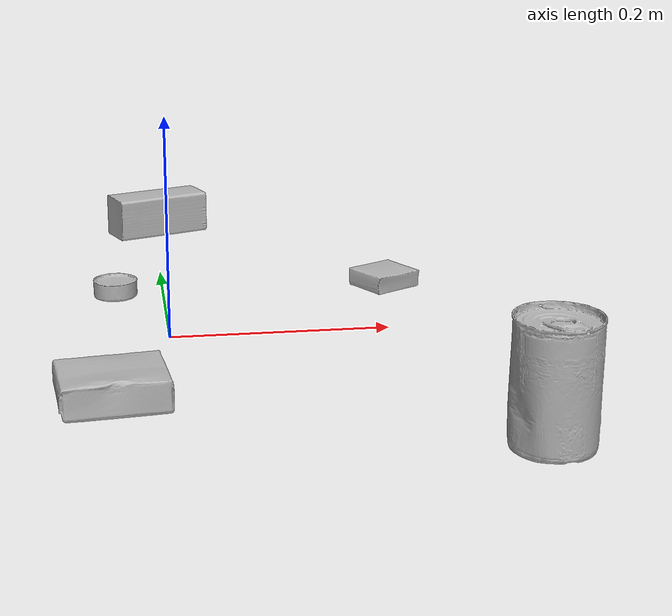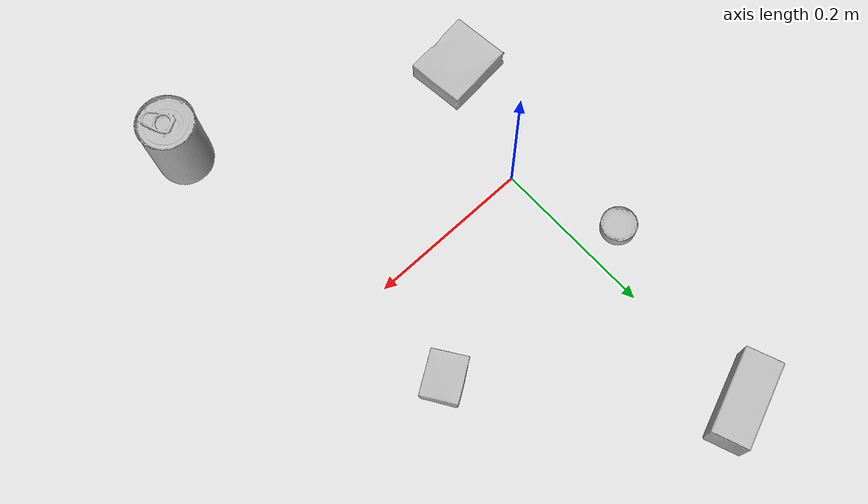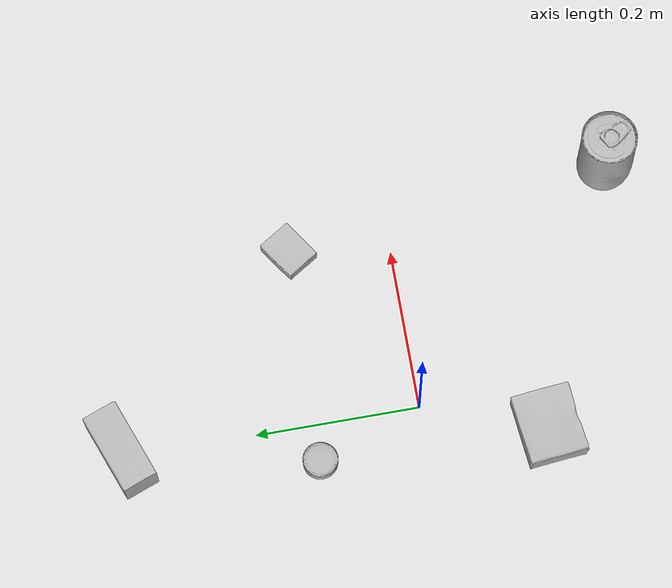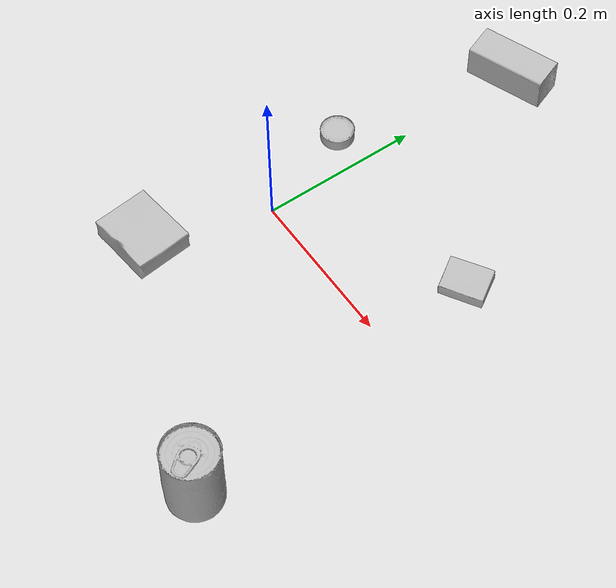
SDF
<sdf version="1.4">
  <world name="default">
    <light name="light1" type="point">
      <pose>0 0 1 0 0 0</pose>
      <diffuse>3 3 3 1</diffuse>
      <specular>3 3 3 1</specular>
    </light>
    <light name="light2" type="point">
      <pose>0 0.5 2 0 0 0</pose>
      <diffuse>1 1 1 1</diffuse>
      <specular>1 1 1 1</specular>
    </light>
    <light name="light3" type="point">
      <pose>0 0.5 2 0 0 0</pose>
      <diffuse>3 3 3 1</diffuse>
      <specular>3 3 3 1</specular>
    </light>
    <scene>
      <ambient>0.7 0.7 0.7</ambient>
    </scene>
    <model name="box1">
      <link name="link_box1">
        <collision name="default">
          <geometry>
            <mesh>
              <uri>model://pudding_box/collision_meshes/collision.obj</uri>
              <scale>0.5 0.5 0.5</scale>
            </mesh>
          </geometry>
          <surface>
            <friction>
              <ode>
                <mu>0.5</mu>
                <mu2>0.5</mu2>
              </ode>
            </friction>
          <contact>
        <ode>
            <max_vel>0</max_vel>
            <min_depth>0.0001</min_depth>
            <kp>1e8</kp>
        </ode>
    </contact></surface>
        </collision>
        <visual name="default">
          <geometry>
            <mesh>
              <uri>model://pudding_box/visual_meshes/visual.dae</uri>
              <scale>0.5 0.5 0.5</scale>
            </mesh>
          </geometry>
        </visual>
        <inertial>
          <mass>0.049221161752939224</mass>
          <pose>0.00024474109522998333 0.00040339428232982755 -0.0002594413817860186 0.005213101772454675 -0.006603800120423707 0.020079827019105066</pose>
          <inertia>
            <ixx>1.3910499e-05</ixx>
            <iyy>9.3590825e-06</iyy>
            <izz>2.0542482e-05</izz>
            <ixy>0</ixy>
            <ixz>0</ixz>
            <iyz>0</iyz>
          </inertia>
        </inertial>
      </link>
      <pose>0.2197408378124237 0.12278153002262115 0.009862902574241161 0.022348535936409415 -0.01139167065325069 2.148087312826016</pose>
    </model>
    <model name="box2">
      <link name="link_box2">
        <collision name="default">
          <geometry>
            <mesh>
              <uri>model://gelatin_box/collision_meshes/collision.obj</uri>
              <scale>1.0 1.0 1.0</scale>
            </mesh>
          </geometry>
          <surface>
            <friction>
              <ode>
                <mu>0.5</mu>
                <mu2>0.5</mu2>
              </ode>
            </friction>
          <contact>
        <ode>
            <max_vel>0</max_vel>
            <min_depth>0.0001</min_depth>
            <kp>1e8</kp>
        </ode>
    </contact></surface>
        </collision>
        <visual name="default">
          <geometry>
            <mesh>
              <uri>model://gelatin_box/visual_meshes/visual.dae</uri>
              <scale>1.0 1.0 1.0</scale>
            </mesh>
          </geometry>
        </visual>
        <inertial>
          <mass>0.1975366622209549</mass>
          <pose>0.000431961816502735 0.00011156871187267825 -0.00036403207923285663 -0.0010503719683328595 -0.0047558182256164224 0.016440557608480007</pose>
          <inertia>
            <ixx>0.00013944478</ixx>
            <iyy>9.960467e-05</iyy>
            <izz>0.00021226601</izz>
            <ixy>0</ixy>
            <ixz>0</ixz>
            <iyz>0</iyz>
          </inertia>
        </inertial>
      </link>
      <pose>-0.052299659699201584 -0.1481202393770218 0.015168314799666405 0.005597403068922076 -0.007304455689466959 -1.4728888107760627</pose>
    </model>
    <model name="box3">
      <link name="link_box3">
        <collision name="default">
          <geometry>
            <mesh>
              <uri>model://wood_block/collision_meshes/collision.obj</uri>
              <scale>0.5 0.5 0.5</scale>
            </mesh>
          </geometry>
          <surface>
            <friction>
              <ode>
                <mu>0.5</mu>
                <mu2>0.5</mu2>
              </ode>
            </friction>
          <contact>
        <ode>
            <max_vel>0</max_vel>
            <min_depth>0.0001</min_depth>
            <kp>1e8</kp>
        </ode>
    </contact></surface>
        </collision>
        <visual name="default">
          <geometry>
            <mesh>
              <uri>model://wood_block/visual_meshes/visual.dae</uri>
              <scale>0.5 0.5 0.5</scale>
            </mesh>
          </geometry>
        </visual>
        <inertial>
          <mass>0.2799808979034424</mass>
          <pose>-2.9066577553749084e-06 -0.000285404734313488 0.00013204291462898254 -0.05220811074253327 -0.005192695744074178 -0.0068613776969266935</pose>
          <inertia>
            <ixx>9.3664195e-05</ixx>
            <iyy>0.0002958853</iyy>
            <izz>0.00029477844</izz>
            <ixy>0</ixy>
            <ixz>0</ixz>
            <iyz>0</iyz>
          </inertia>
        </inertial>
      </link>
      <pose>0.004297246225178242 0.3612369894981384 0.022629255428910255 -0.005208369735304871 0.005718737222595744 0.3620810838307813</pose>
    </model>
    <model name="can1">
      <link name="link_can1">
        <collision name="default">
          <geometry>
            <mesh>
              <uri>model://tomato_soup_can/collision_meshes/collision.obj</uri>
              <scale>1.0 1.0 1.0</scale>
            </mesh>
          </geometry>
          <surface>
            <friction>
              <ode>
                <mu>0.5</mu>
                <mu2>0.5</mu2>
              </ode>
            </friction>
          <contact>
        <ode>
            <max_vel>0</max_vel>
            <min_depth>0.0001</min_depth>
            <kp>1e8</kp>
        </ode>
    </contact></surface>
        </collision>
        <visual name="default">
          <geometry>
            <mesh>
              <uri>model://tomato_soup_can/visual_meshes/visual.dae</uri>
              <scale>1.0 1.0 1.0</scale>
            </mesh>
          </geometry>
        </visual>
        <inertial>
          <mass>0.35683923959732056</mass>
          <pose>0.00012652271834667772 0.00010805513738887385 -0.0017973982030525804 0.007020067402313596 0.00042299257688944205 -0.009903281374499336</pose>
          <inertia>
            <ixx>0.0003912439</ixx>
            <iyy>0.00038898273</iyy>
            <izz>0.00020277809</izz>
            <ixy>0</ixy>
            <ixz>0</ixz>
            <iyz>0</iyz>
          </inertia>
        </inertial>
      </link>
      <pose>0.26516738533973694 -0.2792087495326996 0.051274023950099945 -3.357184878934388e-07 -3.735585192365913e-07 0.23637914635956014</pose>
    </model>
    <model name="can2">
      <link name="link_can2">
        <collision name="default">
          <geometry>
            <mesh>
              <uri>model://tuna_fish_can/collision_meshes/collision.obj</uri>
              <scale>0.5 0.5 0.5</scale>
            </mesh>
          </geometry>
          <surface>
            <friction>
              <ode>
                <mu>0.5</mu>
                <mu2>0.5</mu2>
              </ode>
            </friction>
          <contact>
        <ode>
            <max_vel>0</max_vel>
            <min_depth>0.0001</min_depth>
            <kp>1e8</kp>
        </ode>
    </contact></surface>
        </collision>
        <visual name="default">
          <geometry>
            <mesh>
              <uri>model://tuna_fish_can/visual_meshes/visual.dae</uri>
              <scale>0.5 0.5 0.5</scale>
            </mesh>
          </geometry>
        </visual>
        <inertial>
          <mass>0.011508840136229992</mass>
          <pose>-2.0362092982395552e-05 -7.256176559167216e-06 -0.0005269026150926948 -0.0017944756095399476 0.0001716207335623094 0.24053890436657652</pose>
          <inertia>
            <ixx>1.5560124e-06</ixx>
            <iyy>1.5495272e-06</iyy>
            <izz>2.662559e-06</izz>
            <ixy>0</ixy>
            <ixz>0</ixz>
            <iyz>0</iyz>
          </inertia>
        </inertial>
      </link>
      <pose>-0.04643822833895683 0.1286635547876358 0.008519998751580715 -1.6747091615210555e-08 -2.4031099763606032e-08 -0.8661217775226497</pose>
    </model>
  <physics type="ode">
      <max_contacts>50</max_contacts>
      <ode>
        <solver>
          <type>quick</type>
          <iters>75</iters>
        </solver>
        <constraints>
          <contact_max_correcting_vel>0</contact_max_correcting_vel>
          <contact_surface_layer>0</contact_surface_layer>
        </constraints>
      </ode>
    </physics></world>
</sdf>
